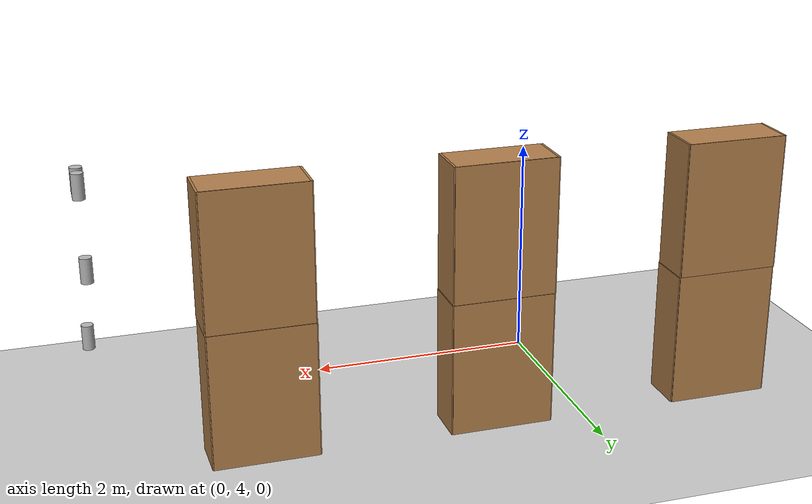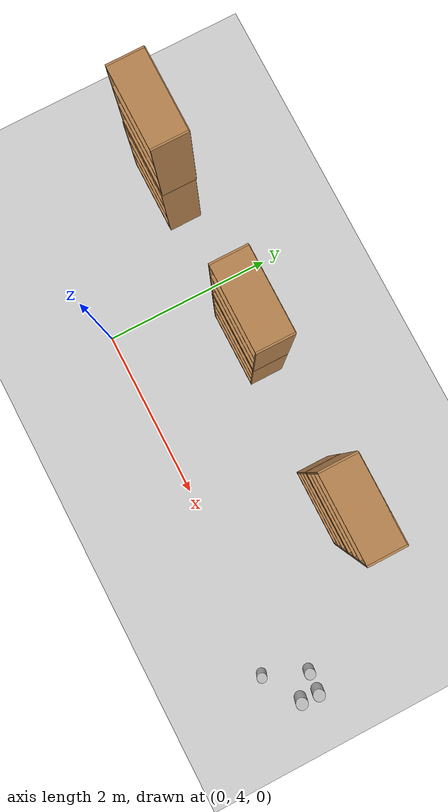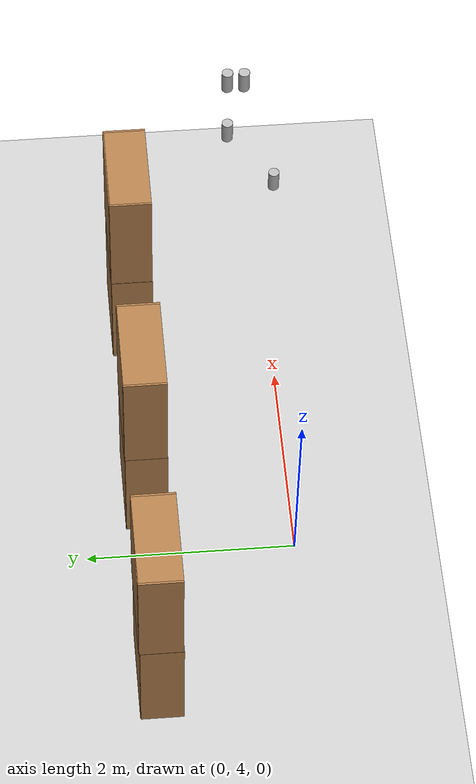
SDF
<sdf version="1.6">
 <world name="default">
  <model name="ground_plane">
   <static>1</static>
   <link name="link">
    <collision name="collision">
     <geometry><plane><normal>0 0 1</normal><size>100 100</size></plane></geometry>
     <surface><friction><ode><mu>100</mu><mu2>50</mu2></ode></friction></surface>
    </collision>
    <visual name="visual">
     <cast_shadows>0</cast_shadows>
     <geometry><plane><normal>0 0 1</normal><size>100 100</size></plane></geometry>
     <material>
      <script><uri>file://media/materials/scripts/gazebo.material</uri><name>Gazebo/Grey</name></script>
     </material>
    </visual>
   </link>
  </model>
  <model name="bookshelf">
   <static>1</static>
   <link name="link">
    <inertial><mass>1</mass></inertial>
    <collision name="back">
     <pose>0 0.005 0.6 0 -0 0</pose>
     <geometry><box><size>0.9 0.01 1.2</size></box></geometry>
    </collision>
    <visual name="visual1">
     <pose>0 0.005 0.6 0 -0 0</pose>
     <geometry><box><size>0.9 0.01 1.2</size></box></geometry>
     <material>
      <script><uri>file://media/materials/scripts/gazebo.material</uri><name>Gazebo/Wood</name></script>
     </material>
    </visual>
    <collision name="left_side">
     <pose>0.45 -0.195 0.6 0 -0 0</pose>
     <geometry><box><size>0.02 0.4 1.2</size></box></geometry>
    </collision>
    <visual name="visual2">
     <pose>0.45 -0.195 0.6 0 -0 0</pose>
     <geometry><box><size>0.02 0.4 1.2</size></box></geometry>
     <material>
      <script><uri>file://media/materials/scripts/gazebo.material</uri><name>Gazebo/Wood</name></script>
     </material>
    </visual>
    <collision name="right_side">
     <pose>-0.45 -0.195 0.6 0 -0 0</pose>
     <geometry><box><size>0.02 0.4 1.2</size></box></geometry>
    </collision>
    <visual name="visual3">
     <pose>-0.45 -0.195 0.6 0 -0 0</pose>
     <geometry><box><size>0.02 0.4 1.2</size></box></geometry>
     <material>
      <script><uri>file://media/materials/scripts/gazebo.material</uri><name>Gazebo/Wood</name></script>
     </material>
    </visual>
    <collision name="bottom">
     <pose>0 -0.195 0.03 0 -0 0</pose>
     <geometry><box><size>0.88 0.4 0.06</size></box></geometry>
    </collision>
    <visual name="visual4">
     <pose>0 -0.195 0.03 0 -0 0</pose>
     <geometry><box><size>0.88 0.4 0.06</size></box></geometry>
     <material>
      <script><uri>file://media/materials/scripts/gazebo.material</uri><name>Gazebo/Wood</name></script>
     </material>
    </visual>
    <collision name="top">
     <pose>0 -0.195 1.19 0 -0 0</pose>
     <geometry><box><size>0.88 0.4 0.02</size></box></geometry>
    </collision>
    <visual name="visual5">
     <pose>0 -0.195 1.19 0 -0 0</pose>
     <geometry><box><size>0.88 0.4 0.02</size></box></geometry>
     <material>
      <script><uri>file://media/materials/scripts/gazebo.material</uri><name>Gazebo/Wood</name></script>
     </material>
    </visual>
    <collision name="low_shelf">
     <pose>0 -0.195 0.43 0 -0 0</pose>
     <geometry><box><size>0.88 0.4 0.02</size></box></geometry>
    </collision>
    <visual name="visual6">
     <pose>0 -0.195 0.43 0 -0 0</pose>
     <geometry><box><size>0.88 0.4 0.02</size></box></geometry>
     <material>
      <script><uri>file://media/materials/scripts/gazebo.material</uri><name>Gazebo/Wood</name></script>
     </material>
    </visual>
    <collision name="high_shelf">
     <pose>0 -0.195 0.8 0 -0 0</pose>
     <geometry><box><size>0.88 0.4 0.02</size></box></geometry>
    </collision>
    <visual name="visual7">
     <pose>0 -0.195 0.8 0 -0 0</pose>
     <geometry><box><size>0.88 0.4 0.02</size></box></geometry>
     <material>
      <script><uri>file://media/materials/scripts/gazebo.material</uri><name>Gazebo/Wood</name></script>
     </material>
    </visual>
   </link>
   <pose>2.83268 5.58259 0 0 -0 0</pose>
  </model>
  <model name="bookshelf_1">
   <static>1</static>
   <link name="link">
    <inertial><mass>1</mass></inertial>
    <collision name="back">
     <pose>0 0.005 0.6 0 -0 0</pose>
     <geometry><box><size>0.9 0.01 1.2</size></box></geometry>
    </collision>
    <visual name="visual1">
     <pose>0 0.005 0.6 0 -0 0</pose>
     <geometry><box><size>0.9 0.01 1.2</size></box></geometry>
     <material>
      <script><uri>file://media/materials/scripts/gazebo.material</uri><name>Gazebo/Wood</name></script>
     </material>
    </visual>
    <collision name="left_side">
     <pose>0.45 -0.195 0.6 0 -0 0</pose>
     <geometry><box><size>0.02 0.4 1.2</size></box></geometry>
    </collision>
    <visual name="visual2">
     <pose>0.45 -0.195 0.6 0 -0 0</pose>
     <geometry><box><size>0.02 0.4 1.2</size></box></geometry>
     <material>
      <script><uri>file://media/materials/scripts/gazebo.material</uri><name>Gazebo/Wood</name></script>
     </material>
    </visual>
    <collision name="right_side">
     <pose>-0.45 -0.195 0.6 0 -0 0</pose>
     <geometry><box><size>0.02 0.4 1.2</size></box></geometry>
    </collision>
    <visual name="visual3">
     <pose>-0.45 -0.195 0.6 0 -0 0</pose>
     <geometry><box><size>0.02 0.4 1.2</size></box></geometry>
     <material>
      <script><uri>file://media/materials/scripts/gazebo.material</uri><name>Gazebo/Wood</name></script>
     </material>
    </visual>
    <collision name="bottom">
     <pose>0 -0.195 0.03 0 -0 0</pose>
     <geometry><box><size>0.88 0.4 0.06</size></box></geometry>
    </collision>
    <visual name="visual4">
     <pose>0 -0.195 0.03 0 -0 0</pose>
     <geometry><box><size>0.88 0.4 0.06</size></box></geometry>
     <material>
      <script><uri>file://media/materials/scripts/gazebo.material</uri><name>Gazebo/Wood</name></script>
     </material>
    </visual>
    <collision name="top">
     <pose>0 -0.195 1.19 0 -0 0</pose>
     <geometry><box><size>0.88 0.4 0.02</size></box></geometry>
    </collision>
    <visual name="visual5">
     <pose>0 -0.195 1.19 0 -0 0</pose>
     <geometry><box><size>0.88 0.4 0.02</size></box></geometry>
     <material>
      <script><uri>file://media/materials/scripts/gazebo.material</uri><name>Gazebo/Wood</name></script>
     </material>
    </visual>
    <collision name="low_shelf">
     <pose>0 -0.195 0.43 0 -0 0</pose>
     <geometry><box><size>0.88 0.4 0.02</size></box></geometry>
    </collision>
    <visual name="visual6">
     <pose>0 -0.195 0.43 0 -0 0</pose>
     <geometry><box><size>0.88 0.4 0.02</size></box></geometry>
     <material>
      <script><uri>file://media/materials/scripts/gazebo.material</uri><name>Gazebo/Wood</name></script>
     </material>
    </visual>
    <collision name="high_shelf">
     <pose>0 -0.195 0.8 0 -0 0</pose>
     <geometry><box><size>0.88 0.4 0.02</size></box></geometry>
    </collision>
    <visual name="visual7">
     <pose>0 -0.195 0.8 0 -0 0</pose>
     <geometry><box><size>0.88 0.4 0.02</size></box></geometry>
     <material>
      <script><uri>file://media/materials/scripts/gazebo.material</uri><name>Gazebo/Wood</name></script>
     </material>
    </visual>
   </link>
   <pose>0.770602 5.5901 0 0 -0 0</pose>
  </model>
  <model name="bookshelf_2_clone">
   <static>1</static>
   <link name="link">
    <inertial><mass>1</mass></inertial>
    <collision name="back">
     <pose>0 0.005 0.6 0 -0 0</pose>
     <geometry><box><size>0.9 0.01 1.2</size></box></geometry>
    </collision>
    <visual name="visual1">
     <pose>0 0.005 0.6 0 -0 0</pose>
     <geometry><box><size>0.9 0.01 1.2</size></box></geometry>
     <material>
      <script><uri>file://media/materials/scripts/gazebo.material</uri><name>Gazebo/Wood</name></script>
     </material>
    </visual>
    <collision name="left_side">
     <pose>0.45 -0.195 0.6 0 -0 0</pose>
     <geometry><box><size>0.02 0.4 1.2</size></box></geometry>
    </collision>
    <visual name="visual2">
     <pose>0.45 -0.195 0.6 0 -0 0</pose>
     <geometry><box><size>0.02 0.4 1.2</size></box></geometry>
     <material>
      <script><uri>file://media/materials/scripts/gazebo.material</uri><name>Gazebo/Wood</name></script>
     </material>
    </visual>
    <collision name="right_side">
     <pose>-0.45 -0.195 0.6 0 -0 0</pose>
     <geometry><box><size>0.02 0.4 1.2</size></box></geometry>
    </collision>
    <visual name="visual3">
     <pose>-0.45 -0.195 0.6 0 -0 0</pose>
     <geometry><box><size>0.02 0.4 1.2</size></box></geometry>
     <material>
      <script><uri>file://media/materials/scripts/gazebo.material</uri><name>Gazebo/Wood</name></script>
     </material>
    </visual>
    <collision name="bottom">
     <pose>0 -0.195 0.03 0 -0 0</pose>
     <geometry><box><size>0.88 0.4 0.06</size></box></geometry>
    </collision>
    <visual name="visual4">
     <pose>0 -0.195 0.03 0 -0 0</pose>
     <geometry><box><size>0.88 0.4 0.06</size></box></geometry>
     <material>
      <script><uri>file://media/materials/scripts/gazebo.material</uri><name>Gazebo/Wood</name></script>
     </material>
    </visual>
    <collision name="top">
     <pose>0 -0.195 1.19 0 -0 0</pose>
     <geometry><box><size>0.88 0.4 0.02</size></box></geometry>
    </collision>
    <visual name="visual5">
     <pose>0 -0.195 1.19 0 -0 0</pose>
     <geometry><box><size>0.88 0.4 0.02</size></box></geometry>
     <material>
      <script><uri>file://media/materials/scripts/gazebo.material</uri><name>Gazebo/Wood</name></script>
     </material>
    </visual>
    <collision name="low_shelf">
     <pose>0 -0.195 0.43 0 -0 0</pose>
     <geometry><box><size>0.88 0.4 0.02</size></box></geometry>
    </collision>
    <visual name="visual6">
     <pose>0 -0.195 0.43 0 -0 0</pose>
     <geometry><box><size>0.88 0.4 0.02</size></box></geometry>
     <material>
      <script><uri>file://media/materials/scripts/gazebo.material</uri><name>Gazebo/Wood</name></script>
     </material>
    </visual>
    <collision name="high_shelf">
     <pose>0 -0.195 0.8 0 -0 0</pose>
     <geometry><box><size>0.88 0.4 0.02</size></box></geometry>
    </collision>
    <visual name="visual7">
     <pose>0 -0.195 0.8 0 -0 0</pose>
     <geometry><box><size>0.88 0.4 0.02</size></box></geometry>
     <material>
      <script><uri>file://media/materials/scripts/gazebo.material</uri><name>Gazebo/Wood</name></script>
     </material>
    </visual>
   </link>
   <pose>-1.30264 5.59901 0 0 -0 0</pose>
  </model>
  <model name="bookshelf_3_clone">
   <static>1</static>
   <link name="link">
    <inertial><mass>1</mass></inertial>
    <collision name="back">
     <pose>0 0.005 0.6 0 -0 0</pose>
     <geometry><box><size>0.9 0.01 1.2</size></box></geometry>
    </collision>
    <visual name="visual1">
     <pose>0 0.005 0.6 0 -0 0</pose>
     <geometry><box><size>0.9 0.01 1.2</size></box></geometry>
     <material>
      <script><uri>file://media/materials/scripts/gazebo.material</uri><name>Gazebo/Wood</name></script>
     </material>
    </visual>
    <collision name="left_side">
     <pose>0.45 -0.195 0.6 0 -0 0</pose>
     <geometry><box><size>0.02 0.4 1.2</size></box></geometry>
    </collision>
    <visual name="visual2">
     <pose>0.45 -0.195 0.6 0 -0 0</pose>
     <geometry><box><size>0.02 0.4 1.2</size></box></geometry>
     <material>
      <script><uri>file://media/materials/scripts/gazebo.material</uri><name>Gazebo/Wood</name></script>
     </material>
    </visual>
    <collision name="right_side">
     <pose>-0.45 -0.195 0.6 0 -0 0</pose>
     <geometry><box><size>0.02 0.4 1.2</size></box></geometry>
    </collision>
    <visual name="visual3">
     <pose>-0.45 -0.195 0.6 0 -0 0</pose>
     <geometry><box><size>0.02 0.4 1.2</size></box></geometry>
     <material>
      <script><uri>file://media/materials/scripts/gazebo.material</uri><name>Gazebo/Wood</name></script>
     </material>
    </visual>
    <collision name="bottom">
     <pose>0 -0.195 0.03 0 -0 0</pose>
     <geometry><box><size>0.88 0.4 0.06</size></box></geometry>
    </collision>
    <visual name="visual4">
     <pose>0 -0.195 0.03 0 -0 0</pose>
     <geometry><box><size>0.88 0.4 0.06</size></box></geometry>
     <material>
      <script><uri>file://media/materials/scripts/gazebo.material</uri><name>Gazebo/Wood</name></script>
     </material>
    </visual>
    <collision name="top">
     <pose>0 -0.195 1.19 0 -0 0</pose>
     <geometry><box><size>0.88 0.4 0.02</size></box></geometry>
    </collision>
    <visual name="visual5">
     <pose>0 -0.195 1.19 0 -0 0</pose>
     <geometry><box><size>0.88 0.4 0.02</size></box></geometry>
     <material>
      <script><uri>file://media/materials/scripts/gazebo.material</uri><name>Gazebo/Wood</name></script>
     </material>
    </visual>
    <collision name="low_shelf">
     <pose>0 -0.195 0.43 0 -0 0</pose>
     <geometry><box><size>0.88 0.4 0.02</size></box></geometry>
    </collision>
    <visual name="visual6">
     <pose>0 -0.195 0.43 0 -0 0</pose>
     <geometry><box><size>0.88 0.4 0.02</size></box></geometry>
     <material>
      <script><uri>file://media/materials/scripts/gazebo.material</uri><name>Gazebo/Wood</name></script>
     </material>
    </visual>
    <collision name="high_shelf">
     <pose>0 -0.195 0.8 0 -0 0</pose>
     <geometry><box><size>0.88 0.4 0.02</size></box></geometry>
    </collision>
    <visual name="visual7">
     <pose>0 -0.195 0.8 0 -0 0</pose>
     <geometry><box><size>0.88 0.4 0.02</size></box></geometry>
     <material>
      <script><uri>file://media/materials/scripts/gazebo.material</uri><name>Gazebo/Wood</name></script>
     </material>
    </visual>
   </link>
   <pose>-1.30336 5.6079 1.20481 0 -0 0</pose>
  </model>
  <model name="bookshelf_3_clone_clone_0">
   <static>1</static>
   <link name="link">
    <inertial><mass>1</mass></inertial>
    <collision name="back">
     <pose>0 0.005 0.6 0 -0 0</pose>
     <geometry><box><size>0.9 0.01 1.2</size></box></geometry>
    </collision>
    <visual name="visual1">
     <pose>0 0.005 0.6 0 -0 0</pose>
     <geometry><box><size>0.9 0.01 1.2</size></box></geometry>
     <material>
      <script><uri>file://media/materials/scripts/gazebo.material</uri><name>Gazebo/Wood</name></script>
     </material>
    </visual>
    <collision name="left_side">
     <pose>0.45 -0.195 0.6 0 -0 0</pose>
     <geometry><box><size>0.02 0.4 1.2</size></box></geometry>
    </collision>
    <visual name="visual2">
     <pose>0.45 -0.195 0.6 0 -0 0</pose>
     <geometry><box><size>0.02 0.4 1.2</size></box></geometry>
     <material>
      <script><uri>file://media/materials/scripts/gazebo.material</uri><name>Gazebo/Wood</name></script>
     </material>
    </visual>
    <collision name="right_side">
     <pose>-0.45 -0.195 0.6 0 -0 0</pose>
     <geometry><box><size>0.02 0.4 1.2</size></box></geometry>
    </collision>
    <visual name="visual3">
     <pose>-0.45 -0.195 0.6 0 -0 0</pose>
     <geometry><box><size>0.02 0.4 1.2</size></box></geometry>
     <material>
      <script><uri>file://media/materials/scripts/gazebo.material</uri><name>Gazebo/Wood</name></script>
     </material>
    </visual>
    <collision name="bottom">
     <pose>0 -0.195 0.03 0 -0 0</pose>
     <geometry><box><size>0.88 0.4 0.06</size></box></geometry>
    </collision>
    <visual name="visual4">
     <pose>0 -0.195 0.03 0 -0 0</pose>
     <geometry><box><size>0.88 0.4 0.06</size></box></geometry>
     <material>
      <script><uri>file://media/materials/scripts/gazebo.material</uri><name>Gazebo/Wood</name></script>
     </material>
    </visual>
    <collision name="top">
     <pose>0 -0.195 1.19 0 -0 0</pose>
     <geometry><box><size>0.88 0.4 0.02</size></box></geometry>
    </collision>
    <visual name="visual5">
     <pose>0 -0.195 1.19 0 -0 0</pose>
     <geometry><box><size>0.88 0.4 0.02</size></box></geometry>
     <material>
      <script><uri>file://media/materials/scripts/gazebo.material</uri><name>Gazebo/Wood</name></script>
     </material>
    </visual>
    <collision name="low_shelf">
     <pose>0 -0.195 0.43 0 -0 0</pose>
     <geometry><box><size>0.88 0.4 0.02</size></box></geometry>
    </collision>
    <visual name="visual6">
     <pose>0 -0.195 0.43 0 -0 0</pose>
     <geometry><box><size>0.88 0.4 0.02</size></box></geometry>
     <material>
      <script><uri>file://media/materials/scripts/gazebo.material</uri><name>Gazebo/Wood</name></script>
     </material>
    </visual>
    <collision name="high_shelf">
     <pose>0 -0.195 0.8 0 -0 0</pose>
     <geometry><box><size>0.88 0.4 0.02</size></box></geometry>
    </collision>
    <visual name="visual7">
     <pose>0 -0.195 0.8 0 -0 0</pose>
     <geometry><box><size>0.88 0.4 0.02</size></box></geometry>
     <material>
      <script><uri>file://media/materials/scripts/gazebo.material</uri><name>Gazebo/Wood</name></script>
     </material>
    </visual>
   </link>
   <pose>0.76852 5.59426 1.20481 0 -0 0</pose>
  </model>
  <model name="bookshelf_3_clone_clone_1">
   <static>1</static>
   <link name="link">
    <inertial><mass>1</mass></inertial>
    <collision name="back">
     <pose>0 0.005 0.6 0 -0 0</pose>
     <geometry><box><size>0.9 0.01 1.2</size></box></geometry>
    </collision>
    <visual name="visual1">
     <pose>0 0.005 0.6 0 -0 0</pose>
     <geometry><box><size>0.9 0.01 1.2</size></box></geometry>
     <material>
      <script><uri>file://media/materials/scripts/gazebo.material</uri><name>Gazebo/Wood</name></script>
     </material>
    </visual>
    <collision name="left_side">
     <pose>0.45 -0.195 0.6 0 -0 0</pose>
     <geometry><box><size>0.02 0.4 1.2</size></box></geometry>
    </collision>
    <visual name="visual2">
     <pose>0.45 -0.195 0.6 0 -0 0</pose>
     <geometry><box><size>0.02 0.4 1.2</size></box></geometry>
     <material>
      <script><uri>file://media/materials/scripts/gazebo.material</uri><name>Gazebo/Wood</name></script>
     </material>
    </visual>
    <collision name="right_side">
     <pose>-0.45 -0.195 0.6 0 -0 0</pose>
     <geometry><box><size>0.02 0.4 1.2</size></box></geometry>
    </collision>
    <visual name="visual3">
     <pose>-0.45 -0.195 0.6 0 -0 0</pose>
     <geometry><box><size>0.02 0.4 1.2</size></box></geometry>
     <material>
      <script><uri>file://media/materials/scripts/gazebo.material</uri><name>Gazebo/Wood</name></script>
     </material>
    </visual>
    <collision name="bottom">
     <pose>0 -0.195 0.03 0 -0 0</pose>
     <geometry><box><size>0.88 0.4 0.06</size></box></geometry>
    </collision>
    <visual name="visual4">
     <pose>0 -0.195 0.03 0 -0 0</pose>
     <geometry><box><size>0.88 0.4 0.06</size></box></geometry>
     <material>
      <script><uri>file://media/materials/scripts/gazebo.material</uri><name>Gazebo/Wood</name></script>
     </material>
    </visual>
    <collision name="top">
     <pose>0 -0.195 1.19 0 -0 0</pose>
     <geometry><box><size>0.88 0.4 0.02</size></box></geometry>
    </collision>
    <visual name="visual5">
     <pose>0 -0.195 1.19 0 -0 0</pose>
     <geometry><box><size>0.88 0.4 0.02</size></box></geometry>
     <material>
      <script><uri>file://media/materials/scripts/gazebo.material</uri><name>Gazebo/Wood</name></script>
     </material>
    </visual>
    <collision name="low_shelf">
     <pose>0 -0.195 0.43 0 -0 0</pose>
     <geometry><box><size>0.88 0.4 0.02</size></box></geometry>
    </collision>
    <visual name="visual6">
     <pose>0 -0.195 0.43 0 -0 0</pose>
     <geometry><box><size>0.88 0.4 0.02</size></box></geometry>
     <material>
      <script><uri>file://media/materials/scripts/gazebo.material</uri><name>Gazebo/Wood</name></script>
     </material>
    </visual>
    <collision name="high_shelf">
     <pose>0 -0.195 0.8 0 -0 0</pose>
     <geometry><box><size>0.88 0.4 0.02</size></box></geometry>
    </collision>
    <visual name="visual7">
     <pose>0 -0.195 0.8 0 -0 0</pose>
     <geometry><box><size>0.88 0.4 0.02</size></box></geometry>
     <material>
      <script><uri>file://media/materials/scripts/gazebo.material</uri><name>Gazebo/Wood</name></script>
     </material>
    </visual>
   </link>
   <pose>2.83627 5.58516 1.20481 0 -0 0</pose>
  </model>
  <model name="beer_clone_clone_clone_3_clone_clone_1">
   <link name="link">
    <pose>0 0 0.115 0 -0 0</pose>
    <inertial>
     <mass>0.39</mass>
     <inertia><ixx>0.00058</ixx><ixy>0</ixy><ixz>0</ixz><iyy>0.00058</iyy><iyz>0</iyz><izz>0.00019</izz></inertia>
    </inertial>
    <collision name="collision">
     <geometry><cylinder><radius>0.055</radius><length>0.23</length></cylinder></geometry>
    </collision>
    <visual name="visual">
     <geometry><cylinder><radius>0.055</radius><length>0.23</length></cylinder></geometry>
     <material>
      <script>
       <uri>model://beer/materials/scripts</uri>
       <uri>model://beer/materials/textures</uri>
       <name>Beer/Diffuse</name>
      </script>
     </material>
    </visual>
   </link>
   <pose>4.0758 3.82084 0.440002 2.8e-05 1e-06 -1.50156</pose>
  </model>
  <model name="beer_clone_clone_clone_3_clone_clone_clone_clone_2_clone_2">
   <link name="link">
    <pose>0 0 0.115 0 -0 0</pose>
    <inertial>
     <mass>0.39</mass>
     <inertia><ixx>0.00058</ixx><ixy>0</ixy><ixz>0</ixz><iyy>0.00058</iyy><iyz>0</iyz><izz>0.00019</izz></inertia>
    </inertial>
    <collision name="collision">
     <geometry><cylinder><radius>0.055</radius><length>0.23</length></cylinder></geometry>
    </collision>
    <visual name="visual">
     <geometry><cylinder><radius>0.055</radius><length>0.23</length></cylinder></geometry>
     <material>
      <script>
       <uri>model://beer/materials/scripts</uri>
       <uri>model://beer/materials/textures</uri>
       <name>Beer/Diffuse</name>
      </script>
     </material>
    </visual>
   </link>
   <pose>4.0696 4.31282 1.2674 4e-06 -2.6e-05 -1.49311</pose>
  </model>
  <model name="beer_clone_clone_clone_3_clone_clone_clone_clone_2_clone_0_clone_0_clone_0_clone_1">
   <link name="link">
    <pose>0 0 0.115 0 -0 0</pose>
    <inertial>
     <mass>0.39</mass>
     <inertia><ixx>0.00058</ixx><ixy>0</ixy><ixz>0</ixz><iyy>0.00058</iyy><iyz>0</iyz><izz>0.00019</izz></inertia>
    </inertial>
    <collision name="collision">
     <geometry><cylinder><radius>0.055</radius><length>0.23</length></cylinder></geometry>
    </collision>
    <visual name="visual">
     <geometry><cylinder><radius>0.055</radius><length>0.23</length></cylinder></geometry>
     <material>
      <script>
       <uri>model://beer/materials/scripts</uri>
       <uri>model://beer/materials/textures</uri>
       <name>Beer/Diffuse</name>
      </script>
     </material>
    </visual>
   </link>
   <pose>4.07045 4.15904 2.01741 2.8e-05 1.2e-05 -1.49185</pose>
  </model>
  <model name="beer_clone_clone_clone_3_clone_clone_clone_clone_2_clone_0_clone_0_clone_0_clone_2">
   <link name="link">
    <pose>0 0 0.115 0 -0 0</pose>
    <inertial>
     <mass>0.39</mass>
     <inertia><ixx>0.00058</ixx><ixy>0</ixy><ixz>0</ixz><iyy>0.00058</iyy><iyz>0</iyz><izz>0.00019</izz></inertia>
    </inertial>
    <collision name="collision">
     <geometry><cylinder><radius>0.055</radius><length>0.23</length></cylinder></geometry>
    </collision>
    <visual name="visual">
     <geometry><cylinder><radius>0.055</radius><length>0.23</length></cylinder></geometry>
     <material>
      <script>
       <uri>model://beer/materials/scripts</uri>
       <uri>model://beer/materials/textures</uri>
       <name>Beer/Diffuse</name>
      </script>
     </material>
    </visual>
   </link>
   <pose>4.07604 4.32338 2.0174 4e-06 2.5e-05 -1.49467</pose>
  </model>
 </world>
</sdf>
